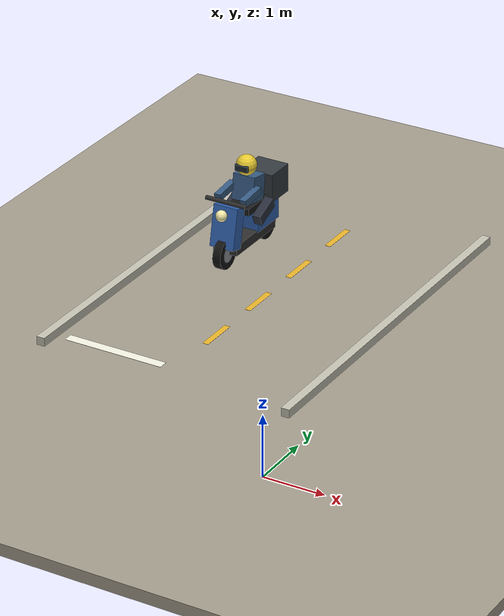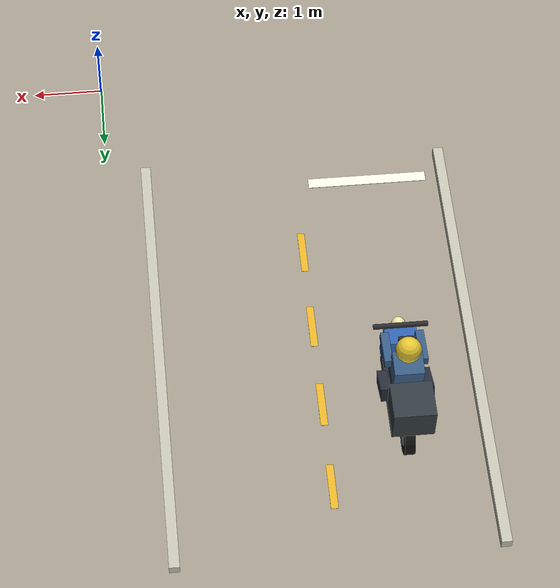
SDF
<sdf version="1.10">
 <world name="swan_market">
  <model name="ground">
   <static>true</static>
   <pose>15 0 -0.1 0 0 0</pose>
   <link name="body">
    <collision name="box_collision"><geometry><box><size>46 24 0.2</size></box></geometry></collision>
    <visual name="box_visual">
     <geometry><box><size>46 24 0.2</size></box></geometry>
     <material><ambient>0.64 0.61 0.55 1</ambient><diffuse>0.64 0.61 0.55 1</diffuse></material>
    </visual>
   </link>
  </model>
  <model name="entrance_curb_-4.83_1">
   <static>true</static>
   <pose>-4.83 4.8 0.07 0 0 0</pose>
   <link name="body">
    <collision name="box_collision"><geometry><box><size>0.14 6.4 0.14</size></box></geometry></collision>
    <visual name="box_visual">
     <geometry><box><size>0.14 6.4 0.14</size></box></geometry>
     <material><ambient>0.77 0.76 0.7 1</ambient><diffuse>0.77 0.76 0.7 1</diffuse></material>
    </visual>
   </link>
  </model>
  <model name="entrance_curb_-0.57_1">
   <static>true</static>
   <pose>-0.57 4.8 0.07 0 0 0</pose>
   <link name="body">
    <collision name="box_collision"><geometry><box><size>0.14 6.4 0.14</size></box></geometry></collision>
    <visual name="box_visual">
     <geometry><box><size>0.14 6.4 0.14</size></box></geometry>
     <material><ambient>0.77 0.76 0.7 1</ambient><diffuse>0.77 0.76 0.7 1</diffuse></material>
    </visual>
   </link>
  </model>
  <model name="road_stop_line_1">
   <static>true</static>
   <pose>-3.75 2 0.016 0 0 0</pose>
   <link name="body">
    <visual name="box_visual">
     <geometry><box><size>1.7 0.16 0.003</size></box></geometry>
     <material><ambient>0.95 0.95 0.89 1</ambient><diffuse>0.95 0.95 0.89 1</diffuse></material>
    </visual>
   </link>
  </model>
  <model name="road_center_line_1_0">
   <static>true</static>
   <pose>-2.7 3.2 0.016 0 0 0</pose>
   <link name="body">
    <visual name="box_visual">
     <geometry><box><size>0.1 0.65 0.003</size></box></geometry>
     <material><ambient>0.91 0.7 0.16 1</ambient><diffuse>0.91 0.7 0.16 1</diffuse></material>
    </visual>
   </link>
  </model>
  <model name="road_center_line_1_1">
   <static>true</static>
   <pose>-2.7 4.45 0.016 0 0 0</pose>
   <link name="body">
    <visual name="box_visual">
     <geometry><box><size>0.1 0.65 0.003</size></box></geometry>
     <material><ambient>0.91 0.7 0.16 1</ambient><diffuse>0.91 0.7 0.16 1</diffuse></material>
    </visual>
   </link>
  </model>
  <model name="road_center_line_1_2">
   <static>true</static>
   <pose>-2.7 5.7 0.016 0 0 0</pose>
   <link name="body">
    <visual name="box_visual">
     <geometry><box><size>0.1 0.65 0.003</size></box></geometry>
     <material><ambient>0.91 0.7 0.16 1</ambient><diffuse>0.91 0.7 0.16 1</diffuse></material>
    </visual>
   </link>
  </model>
  <model name="road_center_line_1_3">
   <static>true</static>
   <pose>-2.7 6.95 0.016 0 0 0</pose>
   <link name="body">
    <visual name="box_visual">
     <geometry><box><size>0.1 0.65 0.003</size></box></geometry>
     <material><ambient>0.91 0.7 0.16 1</ambient><diffuse>0.91 0.7 0.16 1</diffuse></material>
    </visual>
   </link>
  </model>
  <model name="ped_signal_west_green">
   <static>true</static>
   <pose>-5.35 1.95 -5 0 0 1.5708</pose>
   <link name="body">
    <visual name="head_visual">
     <pose>0.025 -0.132 1.977 1.5708 0 0</pose>
     <geometry><cylinder><radius>0.035</radius><length>0.01</length></cylinder></geometry>
     <material>
      <ambient>0.025 1 0.18 1</ambient>
      <diffuse>0.025 1 0.18 1</diffuse>
      <emissive>0.025 1 0.18 1</emissive>
     </material>
     <cast_shadows>false</cast_shadows>
    </visual>
    <visual name="stroke_0_visual">
     <pose>-0.004 -0.132 1.876 0 -2.8633 0</pose>
     <geometry><box><size>0.054 0.01 0.12848</size></box></geometry>
     <material>
      <ambient>0.025 1 0.18 1</ambient>
      <diffuse>0.025 1 0.18 1</diffuse>
      <emissive>0.025 1 0.18 1</emissive>
     </material>
     <cast_shadows>false</cast_shadows>
    </visual>
    <visual name="stroke_1_visual">
     <pose>-0.032 -0.132 1.883 0 -2.234 0</pose>
     <geometry><box><size>0.026 0.01 0.093216</size></box></geometry>
     <material>
      <ambient>0.025 1 0.18 1</ambient>
      <diffuse>0.025 1 0.18 1</diffuse>
      <emissive>0.025 1 0.18 1</emissive>
     </material>
     <cast_shadows>false</cast_shadows>
    </visual>
    <visual name="stroke_2_visual">
     <pose>-0.088 -0.132 1.8665 0 -1.2304 0</pose>
     <geometry><box><size>0.026 0.01 0.062922</size></box></geometry>
     <material>
      <ambient>0.025 1 0.18 1</ambient>
      <diffuse>0.025 1 0.18 1</diffuse>
      <emissive>0.025 1 0.18 1</emissive>
     </material>
     <cast_shadows>false</cast_shadows>
    </visual>
    <visual name="stroke_3_visual">
     <pose>0.0475 -0.132 1.872 0 2.3652 0</pose>
     <geometry><box><size>0.026 0.01 0.090492</size></box></geometry>
     <material>
      <ambient>0.025 1 0.18 1</ambient>
      <diffuse>0.025 1 0.18 1</diffuse>
      <emissive>0.025 1 0.18 1</emissive>
     </material>
     <cast_shadows>false</cast_shadows>
    </visual>
    <visual name="stroke_4_visual">
     <pose>0.097 -0.132 1.8485 0 1.369 0</pose>
     <geometry><box><size>0.026 0.01 0.056911</size></box></geometry>
     <material>
      <ambient>0.025 1 0.18 1</ambient>
      <diffuse>0.025 1 0.18 1</diffuse>
      <emissive>0.025 1 0.18 1</emissive>
     </material>
     <cast_shadows>false</cast_shadows>
    </visual>
    <visual name="stroke_5_visual">
     <pose>-0.052 -0.132 1.76 0 -2.6651 0</pose>
     <geometry><box><size>0.031 0.01 0.15154</size></box></geometry>
     <material>
      <ambient>0.025 1 0.18 1</ambient>
      <diffuse>0.025 1 0.18 1</diffuse>
      <emissive>0.025 1 0.18 1</emissive>
     </material>
     <cast_shadows>false</cast_shadows>
    </visual>
    <visual name="stroke_6_visual">
     <pose>0.0195 -0.132 1.7905 0 2.1749 0</pose>
     <geometry><box><size>0.031 0.01 0.098267</size></box></geometry>
     <material>
      <ambient>0.025 1 0.18 1</ambient>
      <diffuse>0.025 1 0.18 1</diffuse>
      <emissive>0.025 1 0.18 1</emissive>
     </material>
     <cast_shadows>false</cast_shadows>
    </visual>
    <visual name="stroke_7_visual">
     <pose>0.0705 -0.132 1.7295 0 2.74 0</pose>
     <geometry><box><size>0.031 0.01 0.09131</size></box></geometry>
     <material>
      <ambient>0.025 1 0.18 1</ambient>
      <diffuse>0.025 1 0.18 1</diffuse>
      <emissive>0.025 1 0.18 1</emissive>
     </material>
     <cast_shadows>false</cast_shadows>
    </visual>
   </link>
  </model>
  <model name="traffic_motorcycle_2">
   <static>true</static>
   <pose>-3.75 5.8 0 0 0 -1.5708</pose>
   <link name="body">
    <collision name="tire_0_collision">
     <pose>-0.61 0 0.25 1.5708 0 0</pose>
     <geometry><cylinder><radius>0.25</radius><length>0.14</length></cylinder></geometry>
    </collision>
    <visual name="tire_0_visual">
     <pose>-0.61 0 0.25 1.5708 0 0</pose>
     <geometry><cylinder><radius>0.25</radius><length>0.14</length></cylinder></geometry>
     <material><ambient>0.075 0.075 0.07 1</ambient><diffuse>0.075 0.075 0.07 1</diffuse></material>
    </visual>
    <visual name="hub_0_visual">
     <pose>-0.61 0 0.25 1.5708 0 0</pose>
     <geometry><cylinder><radius>0.13</radius><length>0.145</length></cylinder></geometry>
     <material><ambient>0.57 0.59 0.6 1</ambient><diffuse>0.57 0.59 0.6 1</diffuse></material>
    </visual>
    <collision name="tire_1_collision">
     <pose>0.62 0 0.25 1.5708 0 0</pose>
     <geometry><cylinder><radius>0.25</radius><length>0.14</length></cylinder></geometry>
    </collision>
    <visual name="tire_1_visual">
     <pose>0.62 0 0.25 1.5708 0 0</pose>
     <geometry><cylinder><radius>0.25</radius><length>0.14</length></cylinder></geometry>
     <material><ambient>0.075 0.075 0.07 1</ambient><diffuse>0.075 0.075 0.07 1</diffuse></material>
    </visual>
    <visual name="hub_1_visual">
     <pose>0.62 0 0.25 1.5708 0 0</pose>
     <geometry><cylinder><radius>0.13</radius><length>0.145</length></cylinder></geometry>
     <material><ambient>0.57 0.59 0.6 1</ambient><diffuse>0.57 0.59 0.6 1</diffuse></material>
    </visual>
    <collision name="deck_collision">
     <pose>0 0 0.33 0 0 0</pose>
     <geometry><box><size>1.2 0.43 0.17</size></box></geometry>
    </collision>
    <visual name="deck_visual">
     <pose>0 0 0.33 0 0 0</pose>
     <geometry><box><size>1.2 0.43 0.17</size></box></geometry>
     <material><ambient>0.18 0.18 0.18 1</ambient><diffuse>0.18 0.18 0.18 1</diffuse></material>
    </visual>
    <collision name="rear_body_collision">
     <pose>-0.36 0 0.59 0 0 0</pose>
     <geometry><box><size>0.65 0.46 0.4</size></box></geometry>
    </collision>
    <visual name="rear_body_visual">
     <pose>-0.36 0 0.59 0 0 0</pose>
     <geometry><box><size>0.65 0.46 0.4</size></box></geometry>
     <material><ambient>0.19 0.39 0.7 1</ambient><diffuse>0.19 0.39 0.7 1</diffuse></material>
    </visual>
    <collision name="seat_collision">
     <pose>-0.2 0 0.83 0 0 0</pose>
     <geometry><box><size>0.8 0.4 0.12</size></box></geometry>
    </collision>
    <visual name="seat_visual">
     <pose>-0.2 0 0.83 0 0 0</pose>
     <geometry><box><size>0.8 0.4 0.12</size></box></geometry>
     <material><ambient>0.1 0.1 0.1 1</ambient><diffuse>0.1 0.1 0.1 1</diffuse></material>
    </visual>
    <collision name="front_fairing_collision">
     <pose>0.53 0 0.69 0 -0.2 0</pose>
     <geometry><box><size>0.23 0.43 0.69</size></box></geometry>
    </collision>
    <visual name="front_fairing_visual">
     <pose>0.53 0 0.69 0 -0.2 0</pose>
     <geometry><box><size>0.23 0.43 0.69</size></box></geometry>
     <material><ambient>0.19 0.39 0.7 1</ambient><diffuse>0.19 0.39 0.7 1</diffuse></material>
    </visual>
    <collision name="handlebar_collision">
     <pose>0.56 0 1.12 1.5708 0 0</pose>
     <geometry><cylinder><radius>0.035</radius><length>0.72</length></cylinder></geometry>
    </collision>
    <visual name="handlebar_visual">
     <pose>0.56 0 1.12 1.5708 0 0</pose>
     <geometry><cylinder><radius>0.035</radius><length>0.72</length></cylinder></geometry>
     <material><ambient>0.18 0.18 0.18 1</ambient><diffuse>0.18 0.18 0.18 1</diffuse></material>
    </visual>
    <visual name="headlight_visual">
     <pose>0.7 0 0.94 0 0 0</pose>
     <geometry><sphere><radius>0.095</radius></sphere></geometry>
     <material><ambient>0.96 0.92 0.66 1</ambient><diffuse>0.96 0.92 0.66 1</diffuse></material>
    </visual>
    <collision name="delivery_box_collision">
     <pose>-0.65 0 1.01 0 0 0</pose>
     <geometry><box><size>0.51 0.55 0.48</size></box></geometry>
    </collision>
    <visual name="delivery_box_visual">
     <pose>-0.65 0 1.01 0 0 0</pose>
     <geometry><box><size>0.51 0.55 0.48</size></box></geometry>
     <material><ambient>0.2 0.23 0.25 1</ambient><diffuse>0.2 0.23 0.25 1</diffuse></material>
    </visual>
    <collision name="rider_torso_collision">
     <pose>-0.12 0 1.12 0 -0.15 0</pose>
     <geometry><box><size>0.33 0.39 0.43</size></box></geometry>
    </collision>
    <visual name="rider_torso_visual">
     <pose>-0.12 0 1.12 0 -0.15 0</pose>
     <geometry><box><size>0.33 0.39 0.43</size></box></geometry>
     <material><ambient>0.22 0.36 0.52 1</ambient><diffuse>0.22 0.36 0.52 1</diffuse></material>
    </visual>
    <collision name="helmet_collision">
     <pose>-0.07 0 1.51 0 0 0</pose>
     <geometry><sphere><radius>0.17</radius></sphere></geometry>
    </collision>
    <visual name="helmet_visual">
     <pose>-0.07 0 1.51 0 0 0</pose>
     <geometry><sphere><radius>0.17</radius></sphere></geometry>
     <material><ambient>0.91 0.79 0.2 1</ambient><diffuse>0.91 0.79 0.2 1</diffuse></material>
    </visual>
    <visual name="visor_visual">
     <pose>0.087 0 1.51 0 0 0</pose>
     <geometry><box><size>0.045 0.23 0.1</size></box></geometry>
     <material><ambient>0.13 0.17 0.2 1</ambient><diffuse>0.13 0.17 0.2 1</diffuse></material>
    </visual>
    <collision name="rider_leg_-1_collision">
     <pose>-0.12 -0.28 0.75 0 0.4 0</pose>
     <geometry><box><size>0.44 0.14 0.18</size></box></geometry>
    </collision>
    <visual name="rider_leg_-1_visual">
     <pose>-0.12 -0.28 0.75 0 0.4 0</pose>
     <geometry><box><size>0.44 0.14 0.18</size></box></geometry>
     <material><ambient>0.16 0.18 0.23 1</ambient><diffuse>0.16 0.18 0.23 1</diffuse></material>
    </visual>
    <collision name="rider_arm_-1_collision">
     <pose>0.2 -0.23 1.12 0 0.1 0</pose>
     <geometry><box><size>0.48 0.11 0.12</size></box></geometry>
    </collision>
    <visual name="rider_arm_-1_visual">
     <pose>0.2 -0.23 1.12 0 0.1 0</pose>
     <geometry><box><size>0.48 0.11 0.12</size></box></geometry>
     <material><ambient>0.22 0.36 0.52 1</ambient><diffuse>0.22 0.36 0.52 1</diffuse></material>
    </visual>
    <collision name="rider_leg_1_collision">
     <pose>-0.12 0.28 0.75 0 0.4 0</pose>
     <geometry><box><size>0.44 0.14 0.18</size></box></geometry>
    </collision>
    <visual name="rider_leg_1_visual">
     <pose>-0.12 0.28 0.75 0 0.4 0</pose>
     <geometry><box><size>0.44 0.14 0.18</size></box></geometry>
     <material><ambient>0.16 0.18 0.23 1</ambient><diffuse>0.16 0.18 0.23 1</diffuse></material>
    </visual>
    <collision name="rider_arm_1_collision">
     <pose>0.2 0.23 1.12 0 0.1 0</pose>
     <geometry><box><size>0.48 0.11 0.12</size></box></geometry>
    </collision>
    <visual name="rider_arm_1_visual">
     <pose>0.2 0.23 1.12 0 0.1 0</pose>
     <geometry><box><size>0.48 0.11 0.12</size></box></geometry>
     <material><ambient>0.22 0.36 0.52 1</ambient><diffuse>0.22 0.36 0.52 1</diffuse></material>
    </visual>
   </link>
  </model>
 </world>
</sdf>
